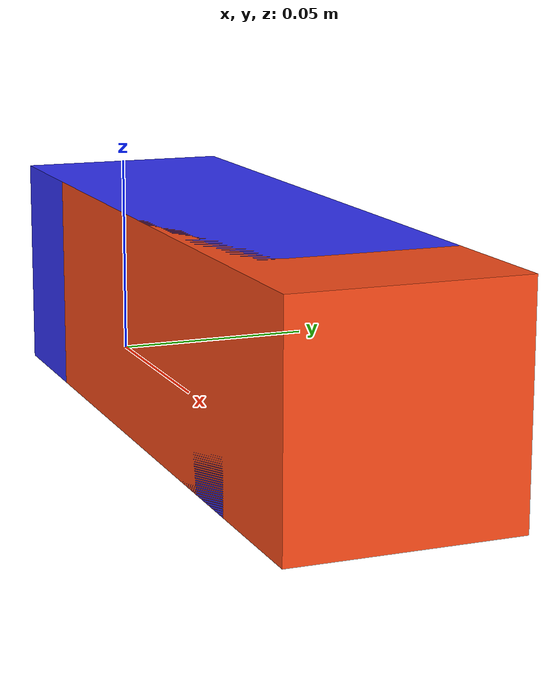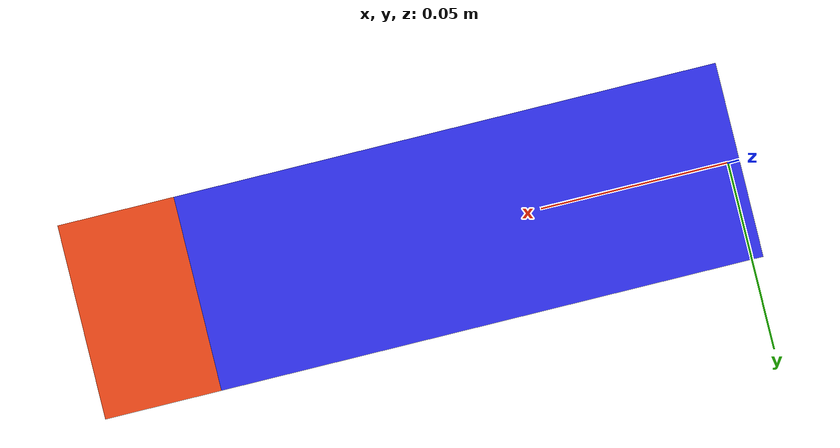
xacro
<?xml version="1.0"?>

<robot xmlns:xacro="http://www.ros.org/wiki/xacro" name="arduinobot">

    <!-- specify some colours -->
    <material name="orange">
        <color rgba="1 0.3 0.1 1"/>
    </material>
    <material name="black">
        <color rgba="0 0 0 1"/>
    </material>
    <material name="white">
        <color rgba="1 1 1 1"/>
    </material>
    <material name="blue">
        <color rgba="0.2 0.2 1 1"/>
    </material>

      <!-- Specify some standard inertial calculations -->
   <!-- these make use of xacro's mathematical functionality -->

    <xacro:macro name="inertial_box" params="mass x y z *origin">
        <inertial>
          <xacro:insert_block name="origin"/>
          <mass value="${mass}" />
            <inertia ixx = "${(1/12)* mass * (y*y+z*z)}" ixy ="0" ixz ="0"
                 iyy = "${(1/12)* mass * (x*x+z*z)}" iyz ="0"
                 izz = "${(1/12)* mass * (x*x+y*y)}" />
        </inertial>
    </xacro:macro>

    <xacro:macro name="inertial_sphere" params="mass radius *origin">
        <inertial>
            <xacro:insert_block name="origin"/>
            <mass value="${mass}" />
                <inertia ixx="${(2/5) * mass * (radius*radius)}" ixy="0.0" ixz="0.0"
                         iyy="${(2/5) * mass * (radius*radius)}" iyz="0.0"
                         izz="${(2/5) * mass * (radius*radius)}" />
        </inertial>
    </xacro:macro>

    <xacro:macro name="inertial_cylinder" params="mass length radius *origin">
        <inertial>
            <xacro:insert_block name="origin"/>
            <mass value="${mass}" />
                <inertia ixx="${(1/12) * mass * (3*radius*radius + length*length)}" ixy="0.0" ixz="0.0"
                         iyy="${(1/12) * mass * (3*radius*radius + length*length)}" iyz="0.0"
                         izz="${(1/2) * mass * (radius*radius)}" />
        </inertial>
    </xacro:macro>

    <xacro:property name="link_length" value = "0.14" />
    <xacro:property name="link_width" value = "0.05" />
    <xacro:property name="link_height" value = "0.05" />
    <xacro:property name="link_mass" value = "1" />
    <xacro:property name="next_link_with_gap" value = "0.10" />  <!-- next link starting point (0.14/2)+0.03 = 0.1 -->
    <xacro:property name="next_link_cg_with_gap" value = "0.17" /> <!-- next link CG from previous link CG (0.14)+0.03 = 0.17 -->

    <!-- Robot is oriented along x-axis -->
    <link name="world"/>

    <joint name="virtual_joint" type="fixed">
        <parent link="world"/>
        <child link="link_1"/>
        <origin xyz="0.0 0.0 0.0" rpy="0.0 0.0 0.0"/>
    </joint>

    <link name="link_1">
        <visual>
          <origin xyz="${link_length/2} 0 ${link_height/2}" rpy="0 0 0" /> <!-- CG posistion of link_1 -->
          <geometry>
             <box size="${link_length} ${link_width} ${link_height}"/>
          </geometry>
          <material name="blue"/>
        </visual>
        <collision>
           <origin xyz="${link_length/2} 0 ${link_height/2}" rpy="0 0 0"/>
           <geometry>
             <box size="${link_length} ${link_width} ${link_height}"/>
          </geometry>
        </collision>
        <xacro:inertial_box mass="${link_mass}" x="${link_length}" y="${link_width}" z="${link_height}">
                <origin xyz="${link_length/2} 0 ${link_height/2}" rpy="0 0 0" />
        </xacro:inertial_box>
    </link>

    <joint name="virtual_joint2" type="fixed">
        <parent link="link_1"/>
        <child link="link_2"/>
        <origin xyz="0.0 0.0 0.0" rpy="0.0 0.0 0.0"/>
    </joint>

    <link name="link_2">
        <visual>
          <origin xyz="${next_link_with_gap} 0 ${link_height/2}" rpy="0 0 0" />
          <geometry>
             <box size="${link_length} ${link_width} ${link_height}"/>
          </geometry>
          <material name="orange"/>
        </visual>
        <collision>
           <origin xyz="${next_link_with_gap} 0 ${link_height/2}" rpy="0 0 0"/>
           <geometry>
             <box size="${link_length} ${link_width} ${link_height}"/>
          </geometry>
        </collision>
        <xacro:inertial_box mass="${link_mass}" x="${link_length}" y="${link_width}" z="${link_height}">
                <origin xyz="${next_link_with_gap} 0 0" rpy="0 0 0" />
        </xacro:inertial_box>
      </link>

</robot>
